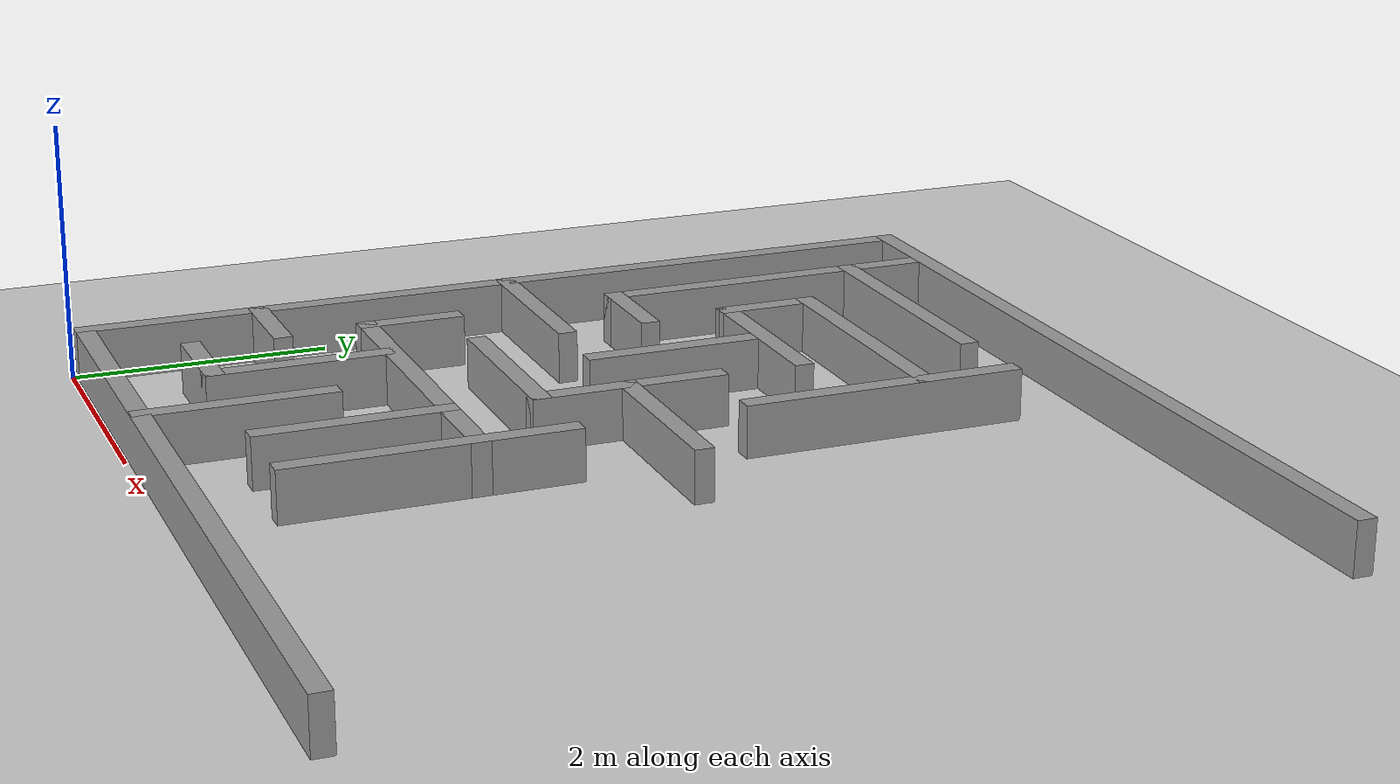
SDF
<sdf version="1.7">
 <world name="default">
  <model name="ground_plane">
   <static>1</static>
   <link name="link">
    <collision name="collision">
     <geometry><plane><normal>0 0 1</normal><size>100 100</size></plane></geometry>
     <surface>
      <contact><collide_bitmask>65535</collide_bitmask></contact>
      <friction><ode><mu>100</mu><mu2>50</mu2></ode></friction>
     </surface>
    </collision>
    <visual name="visual">
     <cast_shadows>0</cast_shadows>
     <geometry><plane><normal>0 0 1</normal><size>100 100</size></plane></geometry>
     <material>
      <script><uri>file://media/materials/scripts/gazebo.material</uri><name>Gazebo/Grey</name></script>
     </material>
    </visual>
   </link>
  </model>
  <model name="Map_1">
   <link name="Wall_156">
    <pose>-3.425 0 0 0 0 -1.5708</pose>
    <inertial>
     <mass>1</mass>
     <inertia><ixx>1</ixx><ixy>0</ixy><ixz>0</ixz><iyy>1</iyy><iyz>0</iyz><izz>1</izz></inertia>
    </inertial>
    <visual name="Wall_156_Visual">
     <pose>0 0 0.2 0 -0 0</pose>
     <geometry><box><size>7 0.15 0.4</size></box></geometry>
     <material>
      <script><uri>file://media/materials/scripts/gazebo.material</uri><name>Gazebo/Grey</name></script>
      <ambient>1 1 1 1</ambient>
      <shader type="pixel"><normal_map>__default__</normal_map></shader>
      <diffuse>0.7 0.7 0.7 1</diffuse>
      <specular>0.01 0.01 0.01 1</specular>
      <emissive>0 0 0 1</emissive>
     </material>
     <meta><layer>0</layer></meta>
    </visual>
    <collision name="Wall_156_Collision">
     <pose>0 0 0.2 0 -0 0</pose>
     <geometry><box><size>7 0.15 0.4</size></box></geometry>
     <surface>
      <friction>
       <ode><mu>1</mu><mu2>1</mu2><fdir1>0 0 0</fdir1><slip1>0</slip1><slip2>0</slip2></ode>
       <torsional>
        <coefficient>1</coefficient>
        <patch_radius>0</patch_radius>
        <surface_radius>0</surface_radius>
        <use_patch_radius>1</use_patch_radius>
        <ode><slip>0</slip></ode>
       </torsional>
      </friction>
      <bounce><restitution_coefficient>0</restitution_coefficient><threshold>1e+06</threshold></bounce>
      <contact>
       <collide_without_contact>0</collide_without_contact>
       <collide_without_contact_bitmask>1</collide_without_contact_bitmask>
       <collide_bitmask>1</collide_bitmask>
       <ode>
        <soft_cfm>0</soft_cfm>
        <soft_erp>0.2</soft_erp>
        <kp>1e+13</kp>
        <kd>1</kd>
        <max_vel>0.01</max_vel>
        <min_depth>0</min_depth>
       </ode>
       <bullet>
        <split_impulse>1</split_impulse>
        <split_impulse_penetration_threshold>-0.01</split_impulse_penetration_threshold>
        <soft_cfm>0</soft_cfm>
        <soft_erp>0.2</soft_erp>
        <kp>1e+13</kp>
        <kd>1</kd>
       </bullet>
      </contact>
     </surface>
    </collision>
   </link>
   <link name="Wall_157">
    <pose>0 -3.425 0 0 -0 0</pose>
    <inertial>
     <mass>1</mass>
     <inertia><ixx>1</ixx><ixy>0</ixy><ixz>0</ixz><iyy>1</iyy><iyz>0</iyz><izz>1</izz></inertia>
    </inertial>
    <visual name="Wall_157_Visual">
     <pose>0 0 0.2 0 -0 0</pose>
     <geometry><box><size>7 0.15 0.4</size></box></geometry>
     <material>
      <script><uri>file://media/materials/scripts/gazebo.material</uri><name>Gazebo/Grey</name></script>
      <ambient>1 1 1 1</ambient>
      <shader type="pixel"><normal_map>__default__</normal_map></shader>
      <diffuse>0.7 0.7 0.7 1</diffuse>
      <specular>0.01 0.01 0.01 1</specular>
      <emissive>0 0 0 1</emissive>
     </material>
     <meta><layer>0</layer></meta>
    </visual>
    <collision name="Wall_157_Collision">
     <pose>0 0 0.2 0 -0 0</pose>
     <geometry><box><size>7 0.15 0.4</size></box></geometry>
     <surface>
      <friction>
       <ode><mu>1</mu><mu2>1</mu2><fdir1>0 0 0</fdir1><slip1>0</slip1><slip2>0</slip2></ode>
       <torsional>
        <coefficient>1</coefficient>
        <patch_radius>0</patch_radius>
        <surface_radius>0</surface_radius>
        <use_patch_radius>1</use_patch_radius>
        <ode><slip>0</slip></ode>
       </torsional>
      </friction>
      <bounce><restitution_coefficient>0</restitution_coefficient><threshold>1e+06</threshold></bounce>
      <contact>
       <collide_without_contact>0</collide_without_contact>
       <collide_without_contact_bitmask>1</collide_without_contact_bitmask>
       <collide_bitmask>1</collide_bitmask>
       <ode>
        <soft_cfm>0</soft_cfm>
        <soft_erp>0.2</soft_erp>
        <kp>1e+13</kp>
        <kd>1</kd>
        <max_vel>0.01</max_vel>
        <min_depth>0</min_depth>
       </ode>
       <bullet>
        <split_impulse>1</split_impulse>
        <split_impulse_penetration_threshold>-0.01</split_impulse_penetration_threshold>
        <soft_cfm>0</soft_cfm>
        <soft_erp>0.2</soft_erp>
        <kp>1e+13</kp>
        <kd>1</kd>
       </bullet>
      </contact>
     </surface>
    </collision>
   </link>
   <link name="Wall_159">
    <pose>0 3.425 0 0 -0 3.14159</pose>
    <inertial>
     <mass>1</mass>
     <inertia><ixx>1</ixx><ixy>0</ixy><ixz>0</ixz><iyy>1</iyy><iyz>0</iyz><izz>1</izz></inertia>
    </inertial>
    <visual name="Wall_159_Visual">
     <pose>0 0 0.2 0 -0 0</pose>
     <geometry><box><size>7 0.15 0.4</size></box></geometry>
     <material>
      <script><uri>file://media/materials/scripts/gazebo.material</uri><name>Gazebo/Grey</name></script>
      <ambient>1 1 1 1</ambient>
      <shader type="pixel"><normal_map>__default__</normal_map></shader>
      <diffuse>0.7 0.7 0.7 1</diffuse>
      <specular>0.01 0.01 0.01 1</specular>
      <emissive>0 0 0 1</emissive>
     </material>
     <meta><layer>0</layer></meta>
    </visual>
    <collision name="Wall_159_Collision">
     <pose>0 0 0.2 0 -0 0</pose>
     <geometry><box><size>7 0.15 0.4</size></box></geometry>
     <surface>
      <friction>
       <ode><mu>1</mu><mu2>1</mu2><fdir1>0 0 0</fdir1><slip1>0</slip1><slip2>0</slip2></ode>
       <torsional>
        <coefficient>1</coefficient>
        <patch_radius>0</patch_radius>
        <surface_radius>0</surface_radius>
        <use_patch_radius>1</use_patch_radius>
        <ode><slip>0</slip></ode>
       </torsional>
      </friction>
      <bounce><restitution_coefficient>0</restitution_coefficient><threshold>1e+06</threshold></bounce>
      <contact>
       <collide_without_contact>0</collide_without_contact>
       <collide_without_contact_bitmask>1</collide_without_contact_bitmask>
       <collide_bitmask>1</collide_bitmask>
       <ode>
        <soft_cfm>0</soft_cfm>
        <soft_erp>0.2</soft_erp>
        <kp>1e+13</kp>
        <kd>1</kd>
        <max_vel>0.01</max_vel>
        <min_depth>0</min_depth>
       </ode>
       <bullet>
        <split_impulse>1</split_impulse>
        <split_impulse_penetration_threshold>-0.01</split_impulse_penetration_threshold>
        <soft_cfm>0</soft_cfm>
        <soft_erp>0.2</soft_erp>
        <kp>1e+13</kp>
        <kd>1</kd>
       </bullet>
      </contact>
     </surface>
    </collision>
   </link>
   <link name="Wall_185">
    <pose>-2.74 2.055 0 0 0 -1.5708</pose>
    <inertial>
     <mass>1</mass>
     <inertia><ixx>1</ixx><ixy>0</ixy><ixz>0</ixz><iyy>1</iyy><iyz>0</iyz><izz>1</izz></inertia>
    </inertial>
    <visual name="Wall_185_Visual">
     <pose>0 0 0.2 0 -0 0</pose>
     <geometry><box><size>2.89 0.15 0.4</size></box></geometry>
     <material>
      <script><uri>file://media/materials/scripts/gazebo.material</uri><name>Gazebo/Grey</name></script>
      <ambient>1 1 1 1</ambient>
      <shader type="pixel"><normal_map>__default__</normal_map></shader>
      <diffuse>0.7 0.7 0.7 1</diffuse>
      <specular>0.01 0.01 0.01 1</specular>
      <emissive>0 0 0 1</emissive>
     </material>
     <meta><layer>0</layer></meta>
    </visual>
    <collision name="Wall_185_Collision">
     <pose>0 0 0.2 0 -0 0</pose>
     <geometry><box><size>2.89 0.15 0.4</size></box></geometry>
     <surface>
      <friction>
       <ode><mu>1</mu><mu2>1</mu2><fdir1>0 0 0</fdir1><slip1>0</slip1><slip2>0</slip2></ode>
       <torsional>
        <coefficient>1</coefficient>
        <patch_radius>0</patch_radius>
        <surface_radius>0</surface_radius>
        <use_patch_radius>1</use_patch_radius>
        <ode><slip>0</slip></ode>
       </torsional>
      </friction>
      <bounce><restitution_coefficient>0</restitution_coefficient><threshold>1e+06</threshold></bounce>
      <contact>
       <collide_without_contact>0</collide_without_contact>
       <collide_without_contact_bitmask>1</collide_without_contact_bitmask>
       <collide_bitmask>1</collide_bitmask>
       <ode>
        <soft_cfm>0</soft_cfm>
        <soft_erp>0.2</soft_erp>
        <kp>1e+13</kp>
        <kd>1</kd>
        <max_vel>0.01</max_vel>
        <min_depth>0</min_depth>
       </ode>
       <bullet>
        <split_impulse>1</split_impulse>
        <split_impulse_penetration_threshold>-0.01</split_impulse_penetration_threshold>
        <soft_cfm>0</soft_cfm>
        <soft_erp>0.2</soft_erp>
        <kp>1e+13</kp>
        <kd>1</kd>
       </bullet>
      </contact>
     </surface>
    </collision>
   </link>
   <link name="Wall_188">
    <pose>-1.7125 2.74 0 0 -0 0</pose>
    <inertial>
     <mass>1</mass>
     <inertia><ixx>1</ixx><ixy>0</ixy><ixz>0</ixz><iyy>1</iyy><iyz>0</iyz><izz>1</izz></inertia>
    </inertial>
    <visual name="Wall_188_Visual">
     <pose>0 0 0.2 0 -0 0</pose>
     <geometry><box><size>2.205 0.15 0.4</size></box></geometry>
     <material>
      <script><uri>file://media/materials/scripts/gazebo.material</uri><name>Gazebo/Grey</name></script>
      <ambient>1 1 1 1</ambient>
      <shader type="pixel"><normal_map>__default__</normal_map></shader>
      <diffuse>0.7 0.7 0.7 1</diffuse>
      <specular>0.01 0.01 0.01 1</specular>
      <emissive>0 0 0 1</emissive>
     </material>
     <meta><layer>0</layer></meta>
    </visual>
    <collision name="Wall_188_Collision">
     <pose>0 0 0.2 0 -0 0</pose>
     <geometry><box><size>2.205 0.15 0.4</size></box></geometry>
     <surface>
      <friction>
       <ode><mu>1</mu><mu2>1</mu2><fdir1>0 0 0</fdir1><slip1>0</slip1><slip2>0</slip2></ode>
       <torsional>
        <coefficient>1</coefficient>
        <patch_radius>0</patch_radius>
        <surface_radius>0</surface_radius>
        <use_patch_radius>1</use_patch_radius>
        <ode><slip>0</slip></ode>
       </torsional>
      </friction>
      <bounce><restitution_coefficient>0</restitution_coefficient><threshold>1e+06</threshold></bounce>
      <contact>
       <collide_without_contact>0</collide_without_contact>
       <collide_without_contact_bitmask>1</collide_without_contact_bitmask>
       <collide_bitmask>1</collide_bitmask>
       <ode>
        <soft_cfm>0</soft_cfm>
        <soft_erp>0.2</soft_erp>
        <kp>1e+13</kp>
        <kd>1</kd>
        <max_vel>0.01</max_vel>
        <min_depth>0</min_depth>
       </ode>
       <bullet>
        <split_impulse>1</split_impulse>
        <split_impulse_penetration_threshold>-0.01</split_impulse_penetration_threshold>
        <soft_cfm>0</soft_cfm>
        <soft_erp>0.2</soft_erp>
        <kp>1e+13</kp>
        <kd>1</kd>
       </bullet>
      </contact>
     </surface>
    </collision>
   </link>
   <link name="Wall_211">
    <pose>0 1.7125 0 0 0 -1.5708</pose>
    <inertial>
     <mass>1</mass>
     <inertia><ixx>1</ixx><ixy>0</ixy><ixz>0</ixz><iyy>1</iyy><iyz>0</iyz><izz>1</izz></inertia>
    </inertial>
    <visual name="Wall_211_Visual">
     <pose>0 0 0.2 0 -0 0</pose>
     <geometry><box><size>2.205 0.15 0.4</size></box></geometry>
     <material>
      <script><uri>file://media/materials/scripts/gazebo.material</uri><name>Gazebo/Grey</name></script>
      <ambient>1 1 1 1</ambient>
      <shader type="pixel"><normal_map>__default__</normal_map></shader>
      <diffuse>0.7 0.7 0.7 1</diffuse>
      <specular>0.01 0.01 0.01 1</specular>
      <emissive>0 0 0 1</emissive>
     </material>
     <meta><layer>0</layer></meta>
    </visual>
    <collision name="Wall_211_Collision">
     <pose>0 0 0.2 0 -0 0</pose>
     <geometry><box><size>2.205 0.15 0.4</size></box></geometry>
     <surface>
      <friction>
       <ode><mu>1</mu><mu2>1</mu2><fdir1>0 0 0</fdir1><slip1>0</slip1><slip2>0</slip2></ode>
       <torsional>
        <coefficient>1</coefficient>
        <patch_radius>0</patch_radius>
        <surface_radius>0</surface_radius>
        <use_patch_radius>1</use_patch_radius>
        <ode><slip>0</slip></ode>
       </torsional>
      </friction>
      <bounce><restitution_coefficient>0</restitution_coefficient><threshold>1e+06</threshold></bounce>
      <contact>
       <collide_without_contact>0</collide_without_contact>
       <collide_without_contact_bitmask>1</collide_without_contact_bitmask>
       <collide_bitmask>1</collide_bitmask>
       <ode>
        <soft_cfm>0</soft_cfm>
        <soft_erp>0.2</soft_erp>
        <kp>1e+13</kp>
        <kd>1</kd>
        <max_vel>0.01</max_vel>
        <min_depth>0</min_depth>
       </ode>
       <bullet>
        <split_impulse>1</split_impulse>
        <split_impulse_penetration_threshold>-0.01</split_impulse_penetration_threshold>
        <soft_cfm>0</soft_cfm>
        <soft_erp>0.2</soft_erp>
        <kp>1e+13</kp>
        <kd>1</kd>
       </bullet>
      </contact>
     </surface>
    </collision>
   </link>
   <link name="Wall_219">
    <pose>-1.0275 2.055 0 0 -0 3.14159</pose>
    <inertial>
     <mass>1</mass>
     <inertia><ixx>1</ixx><ixy>0</ixy><ixz>0</ixz><iyy>1</iyy><iyz>0</iyz><izz>1</izz></inertia>
    </inertial>
    <visual name="Wall_219_Visual">
     <pose>0 0 0.2 0 -0 0</pose>
     <geometry><box><size>2.205 0.15 0.4</size></box></geometry>
     <material>
      <script><uri>file://media/materials/scripts/gazebo.material</uri><name>Gazebo/Grey</name></script>
      <ambient>1 1 1 1</ambient>
      <shader type="pixel"><normal_map>__default__</normal_map></shader>
      <diffuse>0.7 0.7 0.7 1</diffuse>
      <specular>0.01 0.01 0.01 1</specular>
      <emissive>0 0 0 1</emissive>
     </material>
     <meta><layer>0</layer></meta>
    </visual>
    <collision name="Wall_219_Collision">
     <pose>0 0 0.2 0 -0 0</pose>
     <geometry><box><size>2.205 0.15 0.4</size></box></geometry>
     <surface>
      <friction>
       <ode><mu>1</mu><mu2>1</mu2><fdir1>0 0 0</fdir1><slip1>0</slip1><slip2>0</slip2></ode>
       <torsional>
        <coefficient>1</coefficient>
        <patch_radius>0</patch_radius>
        <surface_radius>0</surface_radius>
        <use_patch_radius>1</use_patch_radius>
        <ode><slip>0</slip></ode>
       </torsional>
      </friction>
      <bounce><restitution_coefficient>0</restitution_coefficient><threshold>1e+06</threshold></bounce>
      <contact>
       <collide_without_contact>0</collide_without_contact>
       <collide_without_contact_bitmask>1</collide_without_contact_bitmask>
       <collide_bitmask>1</collide_bitmask>
       <ode>
        <soft_cfm>0</soft_cfm>
        <soft_erp>0.2</soft_erp>
        <kp>1e+13</kp>
        <kd>1</kd>
        <max_vel>0.01</max_vel>
        <min_depth>0</min_depth>
       </ode>
       <bullet>
        <split_impulse>1</split_impulse>
        <split_impulse_penetration_threshold>-0.01</split_impulse_penetration_threshold>
        <soft_cfm>0</soft_cfm>
        <soft_erp>0.2</soft_erp>
        <kp>1e+13</kp>
        <kd>1</kd>
       </bullet>
      </contact>
     </surface>
    </collision>
   </link>
   <link name="Wall_221">
    <pose>-2.055 1.7125 0 0 0 -1.5708</pose>
    <inertial>
     <mass>1</mass>
     <inertia><ixx>1</ixx><ixy>0</ixy><ixz>0</ixz><iyy>1</iyy><iyz>0</iyz><izz>1</izz></inertia>
    </inertial>
    <visual name="Wall_221_Visual">
     <pose>0 0 0.2 0 -0 0</pose>
     <geometry><box><size>0.835 0.15 0.4</size></box></geometry>
     <material>
      <script><uri>file://media/materials/scripts/gazebo.material</uri><name>Gazebo/Grey</name></script>
      <ambient>1 1 1 1</ambient>
      <shader type="pixel"><normal_map>__default__</normal_map></shader>
      <diffuse>0.7 0.7 0.7 1</diffuse>
      <specular>0.01 0.01 0.01 1</specular>
      <emissive>0 0 0 1</emissive>
     </material>
     <meta><layer>0</layer></meta>
    </visual>
    <collision name="Wall_221_Collision">
     <pose>0 0 0.2 0 -0 0</pose>
     <geometry><box><size>0.835 0.15 0.4</size></box></geometry>
     <surface>
      <friction>
       <ode><mu>1</mu><mu2>1</mu2><fdir1>0 0 0</fdir1><slip1>0</slip1><slip2>0</slip2></ode>
       <torsional>
        <coefficient>1</coefficient>
        <patch_radius>0</patch_radius>
        <surface_radius>0</surface_radius>
        <use_patch_radius>1</use_patch_radius>
        <ode><slip>0</slip></ode>
       </torsional>
      </friction>
      <bounce><restitution_coefficient>0</restitution_coefficient><threshold>1e+06</threshold></bounce>
      <contact>
       <collide_without_contact>0</collide_without_contact>
       <collide_without_contact_bitmask>1</collide_without_contact_bitmask>
       <collide_bitmask>1</collide_bitmask>
       <ode>
        <soft_cfm>0</soft_cfm>
        <soft_erp>0.2</soft_erp>
        <kp>1e+13</kp>
        <kd>1</kd>
        <max_vel>0.01</max_vel>
        <min_depth>0</min_depth>
       </ode>
       <bullet>
        <split_impulse>1</split_impulse>
        <split_impulse_penetration_threshold>-0.01</split_impulse_penetration_threshold>
        <soft_cfm>0</soft_cfm>
        <soft_erp>0.2</soft_erp>
        <kp>1e+13</kp>
        <kd>1</kd>
       </bullet>
      </contact>
     </surface>
    </collision>
   </link>
   <link name="Wall_223">
    <pose>-1.37 1.37 0 0 -0 0</pose>
    <inertial>
     <mass>1</mass>
     <inertia><ixx>1</ixx><ixy>0</ixy><ixz>0</ixz><iyy>1</iyy><iyz>0</iyz><izz>1</izz></inertia>
    </inertial>
    <visual name="Wall_223_Visual">
     <pose>0 0 0.2 0 -0 0</pose>
     <geometry><box><size>1.52 0.15 0.4</size></box></geometry>
     <material>
      <script><uri>file://media/materials/scripts/gazebo.material</uri><name>Gazebo/Grey</name></script>
      <ambient>1 1 1 1</ambient>
      <shader type="pixel"><normal_map>__default__</normal_map></shader>
      <diffuse>0.7 0.7 0.7 1</diffuse>
      <specular>0.01 0.01 0.01 1</specular>
      <emissive>0 0 0 1</emissive>
     </material>
     <meta><layer>0</layer></meta>
    </visual>
    <collision name="Wall_223_Collision">
     <pose>0 0 0.2 0 -0 0</pose>
     <geometry><box><size>1.52 0.15 0.4</size></box></geometry>
     <surface>
      <friction>
       <ode><mu>1</mu><mu2>1</mu2><fdir1>0 0 0</fdir1><slip1>0</slip1><slip2>0</slip2></ode>
       <torsional>
        <coefficient>1</coefficient>
        <patch_radius>0</patch_radius>
        <surface_radius>0</surface_radius>
        <use_patch_radius>1</use_patch_radius>
        <ode><slip>0</slip></ode>
       </torsional>
      </friction>
      <bounce><restitution_coefficient>0</restitution_coefficient><threshold>1e+06</threshold></bounce>
      <contact>
       <collide_without_contact>0</collide_without_contact>
       <collide_without_contact_bitmask>1</collide_without_contact_bitmask>
       <collide_bitmask>1</collide_bitmask>
       <ode>
        <soft_cfm>0</soft_cfm>
        <soft_erp>0.2</soft_erp>
        <kp>1e+13</kp>
        <kd>1</kd>
        <max_vel>0.01</max_vel>
        <min_depth>0</min_depth>
       </ode>
       <bullet>
        <split_impulse>1</split_impulse>
        <split_impulse_penetration_threshold>-0.01</split_impulse_penetration_threshold>
        <soft_cfm>0</soft_cfm>
        <soft_erp>0.2</soft_erp>
        <kp>1e+13</kp>
        <kd>1</kd>
       </bullet>
      </contact>
     </surface>
    </collision>
   </link>
   <link name="Wall_225">
    <pose>-2.3975 0.685 0 0 -0 0</pose>
    <inertial>
     <mass>1</mass>
     <inertia><ixx>1</ixx><ixy>0</ixy><ixz>0</ixz><iyy>1</iyy><iyz>0</iyz><izz>1</izz></inertia>
    </inertial>
    <visual name="Wall_225_Visual">
     <pose>0 0 0.2 0 -0 0</pose>
     <geometry><box><size>0.835 0.15 0.4</size></box></geometry>
     <material>
      <script><uri>file://media/materials/scripts/gazebo.material</uri><name>Gazebo/Grey</name></script>
      <ambient>1 1 1 1</ambient>
      <shader type="pixel"><normal_map>__default__</normal_map></shader>
      <diffuse>0.7 0.7 0.7 1</diffuse>
      <specular>0.01 0.01 0.01 1</specular>
      <emissive>0 0 0 1</emissive>
     </material>
     <meta><layer>0</layer></meta>
    </visual>
    <collision name="Wall_225_Collision">
     <pose>0 0 0.2 0 -0 0</pose>
     <geometry><box><size>0.835 0.15 0.4</size></box></geometry>
     <surface>
      <friction>
       <ode><mu>1</mu><mu2>1</mu2><fdir1>0 0 0</fdir1><slip1>0</slip1><slip2>0</slip2></ode>
       <torsional>
        <coefficient>1</coefficient>
        <patch_radius>0</patch_radius>
        <surface_radius>0</surface_radius>
        <use_patch_radius>1</use_patch_radius>
        <ode><slip>0</slip></ode>
       </torsional>
      </friction>
      <bounce><restitution_coefficient>0</restitution_coefficient><threshold>1e+06</threshold></bounce>
      <contact>
       <collide_without_contact>0</collide_without_contact>
       <collide_without_contact_bitmask>1</collide_without_contact_bitmask>
       <collide_bitmask>1</collide_bitmask>
       <ode>
        <soft_cfm>0</soft_cfm>
        <soft_erp>0.2</soft_erp>
        <kp>1e+13</kp>
        <kd>1</kd>
        <max_vel>0.01</max_vel>
        <min_depth>0</min_depth>
       </ode>
       <bullet>
        <split_impulse>1</split_impulse>
        <split_impulse_penetration_threshold>-0.01</split_impulse_penetration_threshold>
        <soft_cfm>0</soft_cfm>
        <soft_erp>0.2</soft_erp>
        <kp>1e+13</kp>
        <kd>1</kd>
       </bullet>
      </contact>
     </surface>
    </collision>
   </link>
   <link name="Wall_227">
    <pose>-1.37 0.685 0 0 0 -1.5708</pose>
    <inertial>
     <mass>1</mass>
     <inertia><ixx>1</ixx><ixy>0</ixy><ixz>0</ixz><iyy>1</iyy><iyz>0</iyz><izz>1</izz></inertia>
    </inertial>
    <visual name="Wall_227_Visual">
     <pose>0 0 0.2 0 -0 0</pose>
     <geometry><box><size>1.52 0.15 0.4</size></box></geometry>
     <material>
      <script><uri>file://media/materials/scripts/gazebo.material</uri><name>Gazebo/Grey</name></script>
      <ambient>1 1 1 1</ambient>
      <shader type="pixel"><normal_map>__default__</normal_map></shader>
      <diffuse>0.7 0.7 0.7 1</diffuse>
      <specular>0.01 0.01 0.01 1</specular>
      <emissive>0 0 0 1</emissive>
     </material>
     <meta><layer>0</layer></meta>
    </visual>
    <collision name="Wall_227_Collision">
     <pose>0 0 0.2 0 -0 0</pose>
     <geometry><box><size>1.52 0.15 0.4</size></box></geometry>
     <surface>
      <friction>
       <ode><mu>1</mu><mu2>1</mu2><fdir1>0 0 0</fdir1><slip1>0</slip1><slip2>0</slip2></ode>
       <torsional>
        <coefficient>1</coefficient>
        <patch_radius>0</patch_radius>
        <surface_radius>0</surface_radius>
        <use_patch_radius>1</use_patch_radius>
        <ode><slip>0</slip></ode>
       </torsional>
      </friction>
      <bounce><restitution_coefficient>0</restitution_coefficient><threshold>1e+06</threshold></bounce>
      <contact>
       <collide_without_contact>0</collide_without_contact>
       <collide_without_contact_bitmask>1</collide_without_contact_bitmask>
       <collide_bitmask>1</collide_bitmask>
       <ode>
        <soft_cfm>0</soft_cfm>
        <soft_erp>0.2</soft_erp>
        <kp>1e+13</kp>
        <kd>1</kd>
        <max_vel>0.01</max_vel>
        <min_depth>0</min_depth>
       </ode>
       <bullet>
        <split_impulse>1</split_impulse>
        <split_impulse_penetration_threshold>-0.01</split_impulse_penetration_threshold>
        <soft_cfm>0</soft_cfm>
        <soft_erp>0.2</soft_erp>
        <kp>1e+13</kp>
        <kd>1</kd>
       </bullet>
      </contact>
     </surface>
    </collision>
   </link>
   <link name="Wall_229">
    <pose>-2.3975 0 0 0 -0 3.14159</pose>
    <inertial>
     <mass>1</mass>
     <inertia><ixx>1</ixx><ixy>0</ixy><ixz>0</ixz><iyy>1</iyy><iyz>0</iyz><izz>1</izz></inertia>
    </inertial>
    <visual name="Wall_229_Visual">
     <pose>0.342 0 0.2 0 -0 0</pose>
     <geometry><box><size>1.53 0.15 0.4</size></box></geometry>
     <material>
      <script><uri>file://media/materials/scripts/gazebo.material</uri><name>Gazebo/Grey</name></script>
      <ambient>1 1 1 1</ambient>
      <shader type="pixel"><normal_map>__default__</normal_map></shader>
      <diffuse>0.7 0.7 0.7 1</diffuse>
      <specular>0.01 0.01 0.01 1</specular>
      <emissive>0 0 0 1</emissive>
     </material>
     <meta><layer>0</layer></meta>
    </visual>
    <collision name="Wall_229_Collision">
     <pose>0.342 0 0.2 0 -0 0</pose>
     <geometry><box><size>1.53 0.15 0.4</size></box></geometry>
     <surface>
      <friction>
       <ode><mu>1</mu><mu2>1</mu2><fdir1>0 0 0</fdir1><slip1>0</slip1><slip2>0</slip2></ode>
       <torsional>
        <coefficient>1</coefficient>
        <patch_radius>0</patch_radius>
        <surface_radius>0</surface_radius>
        <use_patch_radius>1</use_patch_radius>
        <ode><slip>0</slip></ode>
       </torsional>
      </friction>
      <bounce><restitution_coefficient>0</restitution_coefficient><threshold>1e+06</threshold></bounce>
      <contact>
       <collide_without_contact>0</collide_without_contact>
       <collide_without_contact_bitmask>1</collide_without_contact_bitmask>
       <collide_bitmask>1</collide_bitmask>
       <ode>
        <soft_cfm>0</soft_cfm>
        <soft_erp>0.2</soft_erp>
        <kp>1e+13</kp>
        <kd>1</kd>
        <max_vel>0.01</max_vel>
        <min_depth>0</min_depth>
       </ode>
       <bullet>
        <split_impulse>1</split_impulse>
        <split_impulse_penetration_threshold>-0.01</split_impulse_penetration_threshold>
        <soft_cfm>0</soft_cfm>
        <soft_erp>0.2</soft_erp>
        <kp>1e+13</kp>
        <kd>1</kd>
       </bullet>
      </contact>
     </surface>
    </collision>
   </link>
   <link name="Wall_235">
    <pose>-1.37 -0.685 0 0 -0 0</pose>
    <inertial>
     <mass>1</mass>
     <inertia><ixx>1</ixx><ixy>0</ixy><ixz>0</ixz><iyy>1</iyy><iyz>0</iyz><izz>1</izz></inertia>
    </inertial>
    <visual name="Wall_235_Visual">
     <pose>0 0 0.2 0 -0 0</pose>
     <geometry><box><size>1.52 0.15 0.4</size></box></geometry>
     <material>
      <script><uri>file://media/materials/scripts/gazebo.material</uri><name>Gazebo/Grey</name></script>
      <ambient>1 1 1 1</ambient>
      <shader type="pixel"><normal_map>__default__</normal_map></shader>
      <diffuse>0.7 0.7 0.7 1</diffuse>
      <specular>0.01 0.01 0.01 1</specular>
      <emissive>0 0 0 1</emissive>
     </material>
     <meta><layer>0</layer></meta>
    </visual>
    <collision name="Wall_235_Collision">
     <pose>0 0 0.2 0 -0 0</pose>
     <geometry><box><size>1.52 0.15 0.4</size></box></geometry>
     <surface>
      <friction>
       <ode><mu>1</mu><mu2>1</mu2><fdir1>0 0 0</fdir1><slip1>0</slip1><slip2>0</slip2></ode>
       <torsional>
        <coefficient>1</coefficient>
        <patch_radius>0</patch_radius>
        <surface_radius>0</surface_radius>
        <use_patch_radius>1</use_patch_radius>
        <ode><slip>0</slip></ode>
       </torsional>
      </friction>
      <bounce><restitution_coefficient>0</restitution_coefficient><threshold>1e+06</threshold></bounce>
      <contact>
       <collide_without_contact>0</collide_without_contact>
       <collide_without_contact_bitmask>1</collide_without_contact_bitmask>
       <collide_bitmask>1</collide_bitmask>
       <ode>
        <soft_cfm>0</soft_cfm>
        <soft_erp>0.2</soft_erp>
        <kp>1e+13</kp>
        <kd>1</kd>
        <max_vel>0.01</max_vel>
        <min_depth>0</min_depth>
       </ode>
       <bullet>
        <split_impulse>1</split_impulse>
        <split_impulse_penetration_threshold>-0.01</split_impulse_penetration_threshold>
        <soft_cfm>0</soft_cfm>
        <soft_erp>0.2</soft_erp>
        <kp>1e+13</kp>
        <kd>1</kd>
       </bullet>
      </contact>
     </surface>
    </collision>
   </link>
   <link name="Wall_237">
    <pose>-0.685 0 0 0 -0 1.5708</pose>
    <inertial>
     <mass>1</mass>
     <inertia><ixx>1</ixx><ixy>0</ixy><ixz>0</ixz><iyy>1</iyy><iyz>0</iyz><izz>1</izz></inertia>
    </inertial>
    <visual name="Wall_237_Visual">
     <pose>0 0 0.2 0 -0 0</pose>
     <geometry><box><size>1.52 0.15 0.4</size></box></geometry>
     <material>
      <script><uri>file://media/materials/scripts/gazebo.material</uri><name>Gazebo/Grey</name></script>
      <ambient>1 1 1 1</ambient>
      <shader type="pixel"><normal_map>__default__</normal_map></shader>
      <diffuse>0.7 0.7 0.7 1</diffuse>
      <specular>0.01 0.01 0.01 1</specular>
      <emissive>0 0 0 1</emissive>
     </material>
     <meta><layer>0</layer></meta>
    </visual>
    <collision name="Wall_237_Collision">
     <pose>0 0 0.2 0 -0 0</pose>
     <geometry><box><size>1.52 0.15 0.4</size></box></geometry>
     <surface>
      <friction>
       <ode><mu>1</mu><mu2>1</mu2><fdir1>0 0 0</fdir1><slip1>0</slip1><slip2>0</slip2></ode>
       <torsional>
        <coefficient>1</coefficient>
        <patch_radius>0</patch_radius>
        <surface_radius>0</surface_radius>
        <use_patch_radius>1</use_patch_radius>
        <ode><slip>0</slip></ode>
       </torsional>
      </friction>
      <bounce><restitution_coefficient>0</restitution_coefficient><threshold>1e+06</threshold></bounce>
      <contact>
       <collide_without_contact>0</collide_without_contact>
       <collide_without_contact_bitmask>1</collide_without_contact_bitmask>
       <collide_bitmask>1</collide_bitmask>
       <ode>
        <soft_cfm>0</soft_cfm>
        <soft_erp>0.2</soft_erp>
        <kp>1e+13</kp>
        <kd>1</kd>
        <max_vel>0.01</max_vel>
        <min_depth>0</min_depth>
       </ode>
       <bullet>
        <split_impulse>1</split_impulse>
        <split_impulse_penetration_threshold>-0.01</split_impulse_penetration_threshold>
        <soft_cfm>0</soft_cfm>
        <soft_erp>0.2</soft_erp>
        <kp>1e+13</kp>
        <kd>1</kd>
       </bullet>
      </contact>
     </surface>
    </collision>
   </link>
   <link name="Wall_239">
    <inertial>
     <mass>1</mass>
     <inertia><ixx>1</ixx><ixy>0</ixy><ixz>0</ixz><iyy>1</iyy><iyz>0</iyz><izz>1</izz></inertia>
    </inertial>
    <visual name="Wall_239_Visual">
     <pose>0 0 0.2 0 -0 0</pose>
     <geometry><box><size>1.52 0.15 0.4</size></box></geometry>
     <material>
      <script><uri>file://media/materials/scripts/gazebo.material</uri><name>Gazebo/Grey</name></script>
      <ambient>1 1 1 1</ambient>
      <shader type="pixel"><normal_map>__default__</normal_map></shader>
      <diffuse>0.7 0.7 0.7 1</diffuse>
      <specular>0.01 0.01 0.01 1</specular>
      <emissive>0 0 0 1</emissive>
     </material>
     <meta><layer>0</layer></meta>
    </visual>
    <collision name="Wall_239_Collision">
     <pose>0 0 0.2 0 -0 0</pose>
     <geometry><box><size>1.52 0.15 0.4</size></box></geometry>
     <surface>
      <friction>
       <ode><mu>1</mu><mu2>1</mu2><fdir1>0 0 0</fdir1><slip1>0</slip1><slip2>0</slip2></ode>
       <torsional>
        <coefficient>1</coefficient>
        <patch_radius>0</patch_radius>
        <surface_radius>0</surface_radius>
        <use_patch_radius>1</use_patch_radius>
        <ode><slip>0</slip></ode>
       </torsional>
      </friction>
      <bounce><restitution_coefficient>0</restitution_coefficient><threshold>1e+06</threshold></bounce>
      <contact>
       <collide_without_contact>0</collide_without_contact>
       <collide_without_contact_bitmask>1</collide_without_contact_bitmask>
       <collide_bitmask>1</collide_bitmask>
       <ode>
        <soft_cfm>0</soft_cfm>
        <soft_erp>0.2</soft_erp>
        <kp>1e+13</kp>
        <kd>1</kd>
        <max_vel>0.01</max_vel>
        <min_depth>0</min_depth>
       </ode>
       <bullet>
        <split_impulse>1</split_impulse>
        <split_impulse_penetration_threshold>-0.01</split_impulse_penetration_threshold>
        <soft_cfm>0</soft_cfm>
        <soft_erp>0.2</soft_erp>
        <kp>1e+13</kp>
        <kd>1</kd>
       </bullet>
      </contact>
     </surface>
    </collision>
   </link>
   <link name="Wall_245">
    <pose>-1.37 -1.37 0 0 -0 0</pose>
    <inertial>
     <mass>1</mass>
     <inertia><ixx>1</ixx><ixy>0</ixy><ixz>0</ixz><iyy>1</iyy><iyz>0</iyz><izz>1</izz></inertia>
    </inertial>
    <visual name="Wall_245_Visual">
     <pose>0 0 0.2 0 -0 0</pose>
     <geometry><box><size>2.89 0.15 0.4</size></box></geometry>
     <material>
      <script><uri>file://media/materials/scripts/gazebo.material</uri><name>Gazebo/Grey</name></script>
      <ambient>1 1 1 1</ambient>
      <shader type="pixel"><normal_map>__default__</normal_map></shader>
      <diffuse>0.7 0.7 0.7 1</diffuse>
      <specular>0.01 0.01 0.01 1</specular>
      <emissive>0 0 0 1</emissive>
     </material>
     <meta><layer>0</layer></meta>
    </visual>
    <collision name="Wall_245_Collision">
     <pose>0 0 0.2 0 -0 0</pose>
     <geometry><box><size>2.89 0.15 0.4</size></box></geometry>
     <surface>
      <friction>
       <ode><mu>1</mu><mu2>1</mu2><fdir1>0 0 0</fdir1><slip1>0</slip1><slip2>0</slip2></ode>
       <torsional>
        <coefficient>1</coefficient>
        <patch_radius>0</patch_radius>
        <surface_radius>0</surface_radius>
        <use_patch_radius>1</use_patch_radius>
        <ode><slip>0</slip></ode>
       </torsional>
      </friction>
      <bounce><restitution_coefficient>0</restitution_coefficient><threshold>1e+06</threshold></bounce>
      <contact>
       <collide_without_contact>0</collide_without_contact>
       <collide_without_contact_bitmask>1</collide_without_contact_bitmask>
       <collide_bitmask>1</collide_bitmask>
       <ode>
        <soft_cfm>0</soft_cfm>
        <soft_erp>0.2</soft_erp>
        <kp>1e+13</kp>
        <kd>1</kd>
        <max_vel>0.01</max_vel>
        <min_depth>0</min_depth>
       </ode>
       <bullet>
        <split_impulse>1</split_impulse>
        <split_impulse_penetration_threshold>-0.01</split_impulse_penetration_threshold>
        <soft_cfm>0</soft_cfm>
        <soft_erp>0.2</soft_erp>
        <kp>1e+13</kp>
        <kd>1</kd>
       </bullet>
      </contact>
     </surface>
    </collision>
   </link>
   <link name="Wall_247">
    <pose>-2.74 -1.0275 0 0 -0 1.5708</pose>
    <inertial>
     <mass>1</mass>
     <inertia><ixx>1</ixx><ixy>0</ixy><ixz>0</ixz><iyy>1</iyy><iyz>0</iyz><izz>1</izz></inertia>
    </inertial>
    <visual name="Wall_247_Visual">
     <pose>0 0 0.2 0 -0 0</pose>
     <geometry><box><size>0.835 0.15 0.4</size></box></geometry>
     <material>
      <script><uri>file://media/materials/scripts/gazebo.material</uri><name>Gazebo/Grey</name></script>
      <ambient>1 1 1 1</ambient>
      <shader type="pixel"><normal_map>__default__</normal_map></shader>
      <diffuse>0.7 0.7 0.7 1</diffuse>
      <specular>0.01 0.01 0.01 1</specular>
      <emissive>0 0 0 1</emissive>
     </material>
     <meta><layer>0</layer></meta>
    </visual>
    <collision name="Wall_247_Collision">
     <pose>0 0 0.2 0 -0 0</pose>
     <geometry><box><size>0.835 0.15 0.4</size></box></geometry>
     <surface>
      <friction>
       <ode><mu>1</mu><mu2>1</mu2><fdir1>0 0 0</fdir1><slip1>0</slip1><slip2>0</slip2></ode>
       <torsional>
        <coefficient>1</coefficient>
        <patch_radius>0</patch_radius>
        <surface_radius>0</surface_radius>
        <use_patch_radius>1</use_patch_radius>
        <ode><slip>0</slip></ode>
       </torsional>
      </friction>
      <bounce><restitution_coefficient>0</restitution_coefficient><threshold>1e+06</threshold></bounce>
      <contact>
       <collide_without_contact>0</collide_without_contact>
       <collide_without_contact_bitmask>1</collide_without_contact_bitmask>
       <collide_bitmask>1</collide_bitmask>
       <ode>
        <soft_cfm>0</soft_cfm>
        <soft_erp>0.2</soft_erp>
        <kp>1e+13</kp>
        <kd>1</kd>
        <max_vel>0.01</max_vel>
        <min_depth>0</min_depth>
       </ode>
       <bullet>
        <split_impulse>1</split_impulse>
        <split_impulse_penetration_threshold>-0.01</split_impulse_penetration_threshold>
        <soft_cfm>0</soft_cfm>
        <soft_erp>0.2</soft_erp>
        <kp>1e+13</kp>
        <kd>1</kd>
       </bullet>
      </contact>
     </surface>
    </collision>
   </link>
   <link name="Wall_249">
    <pose>0 -1.7125 0 0 -0 1.5708</pose>
    <inertial>
     <mass>1</mass>
     <inertia><ixx>1</ixx><ixy>0</ixy><ixz>0</ixz><iyy>1</iyy><iyz>0</iyz><izz>1</izz></inertia>
    </inertial>
    <visual name="Wall_249_Visual">
     <pose>0 0 0.2 0 -0 0</pose>
     <geometry><box><size>2.205 0.15 0.4</size></box></geometry>
     <material>
      <script><uri>file://media/materials/scripts/gazebo.material</uri><name>Gazebo/Grey</name></script>
      <ambient>1 1 1 1</ambient>
      <shader type="pixel"><normal_map>__default__</normal_map></shader>
      <diffuse>0.7 0.7 0.7 1</diffuse>
      <specular>0.01 0.01 0.01 1</specular>
      <emissive>0 0 0 1</emissive>
     </material>
     <meta><layer>0</layer></meta>
    </visual>
    <collision name="Wall_249_Collision">
     <pose>0 0 0.2 0 -0 0</pose>
     <geometry><box><size>2.205 0.15 0.4</size></box></geometry>
     <surface>
      <friction>
       <ode><mu>1</mu><mu2>1</mu2><fdir1>0 0 0</fdir1><slip1>0</slip1><slip2>0</slip2></ode>
       <torsional>
        <coefficient>1</coefficient>
        <patch_radius>0</patch_radius>
        <surface_radius>0</surface_radius>
        <use_patch_radius>1</use_patch_radius>
        <ode><slip>0</slip></ode>
       </torsional>
      </friction>
      <bounce><restitution_coefficient>0</restitution_coefficient><threshold>1e+06</threshold></bounce>
      <contact>
       <collide_without_contact>0</collide_without_contact>
       <collide_without_contact_bitmask>1</collide_without_contact_bitmask>
       <collide_bitmask>1</collide_bitmask>
       <ode>
        <soft_cfm>0</soft_cfm>
        <soft_erp>0.2</soft_erp>
        <kp>1e+13</kp>
        <kd>1</kd>
        <max_vel>0.01</max_vel>
        <min_depth>0</min_depth>
       </ode>
       <bullet>
        <split_impulse>1</split_impulse>
        <split_impulse_penetration_threshold>-0.01</split_impulse_penetration_threshold>
        <soft_cfm>0</soft_cfm>
        <soft_erp>0.2</soft_erp>
        <kp>1e+13</kp>
        <kd>1</kd>
       </bullet>
      </contact>
     </surface>
    </collision>
   </link>
   <link name="Wall_251">
    <pose>-0.685 -2.055 0 0 0 -1.5708</pose>
    <inertial>
     <mass>1</mass>
     <inertia><ixx>1</ixx><ixy>0</ixy><ixz>0</ixz><iyy>1</iyy><iyz>0</iyz><izz>1</izz></inertia>
    </inertial>
    <visual name="Wall_251_Visual">
     <pose>0 0 0.2 0 -0 0</pose>
     <geometry><box><size>1.52 0.15 0.4</size></box></geometry>
     <material>
      <script><uri>file://media/materials/scripts/gazebo.material</uri><name>Gazebo/Grey</name></script>
      <ambient>1 1 1 1</ambient>
      <shader type="pixel"><normal_map>__default__</normal_map></shader>
      <diffuse>0.7 0.7 0.7 1</diffuse>
      <specular>0.01 0.01 0.01 1</specular>
      <emissive>0 0 0 1</emissive>
     </material>
     <meta><layer>0</layer></meta>
    </visual>
    <collision name="Wall_251_Collision">
     <pose>0 0 0.2 0 -0 0</pose>
     <geometry><box><size>1.52 0.15 0.4</size></box></geometry>
     <surface>
      <friction>
       <ode><mu>1</mu><mu2>1</mu2><fdir1>0 0 0</fdir1><slip1>0</slip1><slip2>0</slip2></ode>
       <torsional>
        <coefficient>1</coefficient>
        <patch_radius>0</patch_radius>
        <surface_radius>0</surface_radius>
        <use_patch_radius>1</use_patch_radius>
        <ode><slip>0</slip></ode>
       </torsional>
      </friction>
      <bounce><restitution_coefficient>0</restitution_coefficient><threshold>1e+06</threshold></bounce>
      <contact>
       <collide_without_contact>0</collide_without_contact>
       <collide_without_contact_bitmask>1</collide_without_contact_bitmask>
       <collide_bitmask>1</collide_bitmask>
       <ode>
        <soft_cfm>0</soft_cfm>
        <soft_erp>0.2</soft_erp>
        <kp>1e+13</kp>
        <kd>1</kd>
        <max_vel>0.01</max_vel>
        <min_depth>0</min_depth>
       </ode>
       <bullet>
        <split_impulse>1</split_impulse>
        <split_impulse_penetration_threshold>-0.01</split_impulse_penetration_threshold>
        <soft_cfm>0</soft_cfm>
        <soft_erp>0.2</soft_erp>
        <kp>1e+13</kp>
        <kd>1</kd>
       </bullet>
      </contact>
     </surface>
    </collision>
   </link>
   <link name="Wall_253">
    <pose>-1.37 -2.74 0 0 -0 1.5708</pose>
    <inertial>
     <mass>1</mass>
     <inertia><ixx>1</ixx><ixy>0</ixy><ixz>0</ixz><iyy>1</iyy><iyz>0</iyz><izz>1</izz></inertia>
    </inertial>
    <visual name="Wall_253_Visual">
     <pose>0.01 0 0.2 0 -0 0</pose>
     <geometry><box><size>1.52 0.15 0.4</size></box></geometry>
     <material>
      <script><uri>file://media/materials/scripts/gazebo.material</uri><name>Gazebo/Grey</name></script>
      <ambient>1 1 1 1</ambient>
      <shader type="pixel"><normal_map>__default__</normal_map></shader>
      <diffuse>0.7 0.7 0.7 1</diffuse>
      <specular>0.01 0.01 0.01 1</specular>
      <emissive>0 0 0 1</emissive>
     </material>
     <meta><layer>0</layer></meta>
    </visual>
    <collision name="Wall_253_Collision">
     <pose>0 0 0.2 0 -0 0</pose>
     <geometry><box><size>1.52 0.15 0.4</size></box></geometry>
     <surface>
      <friction>
       <ode><mu>1</mu><mu2>1</mu2><fdir1>0 0 0</fdir1><slip1>0</slip1><slip2>0</slip2></ode>
       <torsional>
        <coefficient>1</coefficient>
        <patch_radius>0</patch_radius>
        <surface_radius>0</surface_radius>
        <use_patch_radius>1</use_patch_radius>
        <ode><slip>0</slip></ode>
       </torsional>
      </friction>
      <bounce><restitution_coefficient>0</restitution_coefficient><threshold>1e+06</threshold></bounce>
      <contact>
       <collide_without_contact>0</collide_without_contact>
       <collide_without_contact_bitmask>1</collide_without_contact_bitmask>
       <collide_bitmask>1</collide_bitmask>
       <ode>
        <soft_cfm>0</soft_cfm>
        <soft_erp>0.2</soft_erp>
        <kp>1e+13</kp>
        <kd>1</kd>
        <max_vel>0.01</max_vel>
        <min_depth>0</min_depth>
       </ode>
       <bullet>
        <split_impulse>1</split_impulse>
        <split_impulse_penetration_threshold>-0.01</split_impulse_penetration_threshold>
        <soft_cfm>0</soft_cfm>
        <soft_erp>0.2</soft_erp>
        <kp>1e+13</kp>
        <kd>1</kd>
       </bullet>
      </contact>
     </surface>
    </collision>
   </link>
   <link name="Wall_255">
    <pose>-2.3975 -2.74 0 0 -0 0</pose>
    <inertial>
     <mass>1</mass>
     <inertia><ixx>1</ixx><ixy>0</ixy><ixz>0</ixz><iyy>1</iyy><iyz>0</iyz><izz>1</izz></inertia>
    </inertial>
    <visual name="Wall_255_Visual">
     <pose>0 0 0.2 0 -0 0</pose>
     <geometry><box><size>0.835 0.15 0.4</size></box></geometry>
     <material>
      <script><uri>file://media/materials/scripts/gazebo.material</uri><name>Gazebo/Grey</name></script>
      <ambient>1 1 1 1</ambient>
      <shader type="pixel"><normal_map>__default__</normal_map></shader>
      <diffuse>0.7 0.7 0.7 1</diffuse>
      <specular>0.01 0.01 0.01 1</specular>
      <emissive>0 0 0 1</emissive>
     </material>
     <meta><layer>0</layer></meta>
    </visual>
    <collision name="Wall_255_Collision">
     <pose>0 0 0.2 0 -0 0</pose>
     <geometry><box><size>0.835 0.15 0.4</size></box></geometry>
     <surface>
      <friction>
       <ode><mu>1</mu><mu2>1</mu2><fdir1>0 0 0</fdir1><slip1>0</slip1><slip2>0</slip2></ode>
       <torsional>
        <coefficient>1</coefficient>
        <patch_radius>0</patch_radius>
        <surface_radius>0</surface_radius>
        <use_patch_radius>1</use_patch_radius>
        <ode><slip>0</slip></ode>
       </torsional>
      </friction>
      <bounce><restitution_coefficient>0</restitution_coefficient><threshold>1e+06</threshold></bounce>
      <contact>
       <collide_without_contact>0</collide_without_contact>
       <collide_without_contact_bitmask>1</collide_without_contact_bitmask>
       <collide_bitmask>1</collide_bitmask>
       <ode>
        <soft_cfm>0</soft_cfm>
        <soft_erp>0.2</soft_erp>
        <kp>1e+13</kp>
        <kd>1</kd>
        <max_vel>0.01</max_vel>
        <min_depth>0</min_depth>
       </ode>
       <bullet>
        <split_impulse>1</split_impulse>
        <split_impulse_penetration_threshold>-0.01</split_impulse_penetration_threshold>
        <soft_cfm>0</soft_cfm>
        <soft_erp>0.2</soft_erp>
        <kp>1e+13</kp>
        <kd>1</kd>
       </bullet>
      </contact>
     </surface>
    </collision>
   </link>
   <link name="Wall_257">
    <pose>-2.055 -2.055 0 0 -0 1.5708</pose>
    <inertial>
     <mass>1</mass>
     <inertia><ixx>1</ixx><ixy>0</ixy><ixz>0</ixz><iyy>1</iyy><iyz>0</iyz><izz>1</izz></inertia>
    </inertial>
    <visual name="Wall_257_Visual">
     <pose>0 0 0.2 0 -0 0</pose>
     <geometry><box><size>1.52 0.15 0.4</size></box></geometry>
     <material>
      <script><uri>file://media/materials/scripts/gazebo.material</uri><name>Gazebo/Grey</name></script>
      <ambient>1 1 1 1</ambient>
      <shader type="pixel"><normal_map>__default__</normal_map></shader>
      <diffuse>0.7 0.7 0.7 1</diffuse>
      <specular>0.01 0.01 0.01 1</specular>
      <emissive>0 0 0 1</emissive>
     </material>
     <meta><layer>0</layer></meta>
    </visual>
    <collision name="Wall_257_Collision">
     <pose>0 0 0.2 0 -0 0</pose>
     <geometry><box><size>1.52 0.15 0.4</size></box></geometry>
     <surface>
      <friction>
       <ode><mu>1</mu><mu2>1</mu2><fdir1>0 0 0</fdir1><slip1>0</slip1><slip2>0</slip2></ode>
       <torsional>
        <coefficient>1</coefficient>
        <patch_radius>0</patch_radius>
        <surface_radius>0</surface_radius>
        <use_patch_radius>1</use_patch_radius>
        <ode><slip>0</slip></ode>
       </torsional>
      </friction>
      <bounce><restitution_coefficient>0</restitution_coefficient><threshold>1e+06</threshold></bounce>
      <contact>
       <collide_without_contact>0</collide_without_contact>
       <collide_without_contact_bitmask>1</collide_without_contact_bitmask>
       <collide_bitmask>1</collide_bitmask>
       <ode>
        <soft_cfm>0</soft_cfm>
        <soft_erp>0.2</soft_erp>
        <kp>1e+13</kp>
        <kd>1</kd>
        <max_vel>0.01</max_vel>
        <min_depth>0</min_depth>
       </ode>
       <bullet>
        <split_impulse>1</split_impulse>
        <split_impulse_penetration_threshold>-0.01</split_impulse_penetration_threshold>
        <soft_cfm>0</soft_cfm>
        <soft_erp>0.2</soft_erp>
        <kp>1e+13</kp>
        <kd>1</kd>
       </bullet>
      </contact>
     </surface>
    </collision>
   </link>
   <link name="Wall_259">
    <pose>-3.0825 -2.055 0 0 -0 0</pose>
    <inertial>
     <mass>1</mass>
     <inertia><ixx>1</ixx><ixy>0</ixy><ixz>0</ixz><iyy>1</iyy><iyz>0</iyz><izz>1</izz></inertia>
    </inertial>
    <visual name="Wall_259_Visual">
     <pose>0 0 0.2 0 -0 0</pose>
     <geometry><box><size>0.835 0.15 0.4</size></box></geometry>
     <material>
      <script><uri>file://media/materials/scripts/gazebo.material</uri><name>Gazebo/Grey</name></script>
      <ambient>1 1 1 1</ambient>
      <shader type="pixel"><normal_map>__default__</normal_map></shader>
      <diffuse>0.7 0.7 0.7 1</diffuse>
      <specular>0.01 0.01 0.01 1</specular>
      <emissive>0 0 0 1</emissive>
     </material>
     <meta><layer>0</layer></meta>
    </visual>
    <collision name="Wall_259_Collision">
     <pose>0 0 0.2 0 -0 0</pose>
     <geometry><box><size>0.835 0.15 0.4</size></box></geometry>
     <surface>
      <friction>
       <ode><mu>1</mu><mu2>1</mu2><fdir1>0 0 0</fdir1><slip1>0</slip1><slip2>0</slip2></ode>
       <torsional>
        <coefficient>1</coefficient>
        <patch_radius>0</patch_radius>
        <surface_radius>0</surface_radius>
        <use_patch_radius>1</use_patch_radius>
        <ode><slip>0</slip></ode>
       </torsional>
      </friction>
      <bounce><restitution_coefficient>0</restitution_coefficient><threshold>1e+06</threshold></bounce>
      <contact>
       <collide_without_contact>0</collide_without_contact>
       <collide_without_contact_bitmask>1</collide_without_contact_bitmask>
       <collide_bitmask>1</collide_bitmask>
       <ode>
        <soft_cfm>0</soft_cfm>
        <soft_erp>0.2</soft_erp>
        <kp>1e+13</kp>
        <kd>1</kd>
        <max_vel>0.01</max_vel>
        <min_depth>0</min_depth>
       </ode>
       <bullet>
        <split_impulse>1</split_impulse>
        <split_impulse_penetration_threshold>-0.01</split_impulse_penetration_threshold>
        <soft_cfm>0</soft_cfm>
        <soft_erp>0.2</soft_erp>
        <kp>1e+13</kp>
        <kd>1</kd>
       </bullet>
      </contact>
     </surface>
    </collision>
   </link>
   <static>1</static>
   <pose>3.46631 3.52698 0 0 -0 0</pose>
  </model>
 </world>
</sdf>
